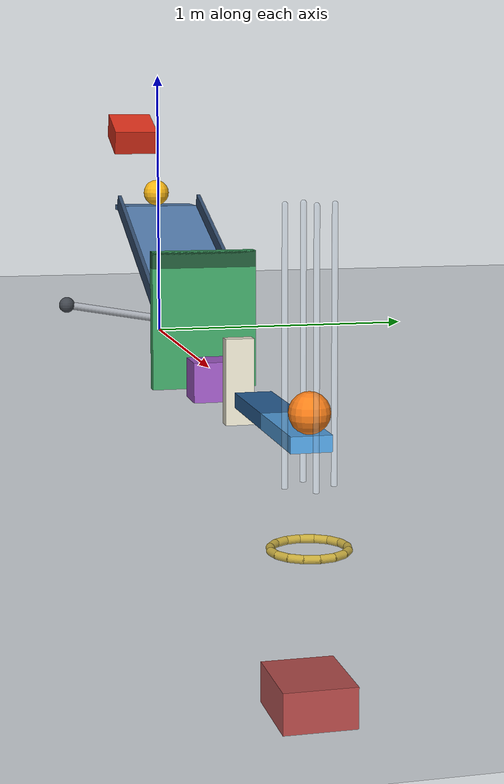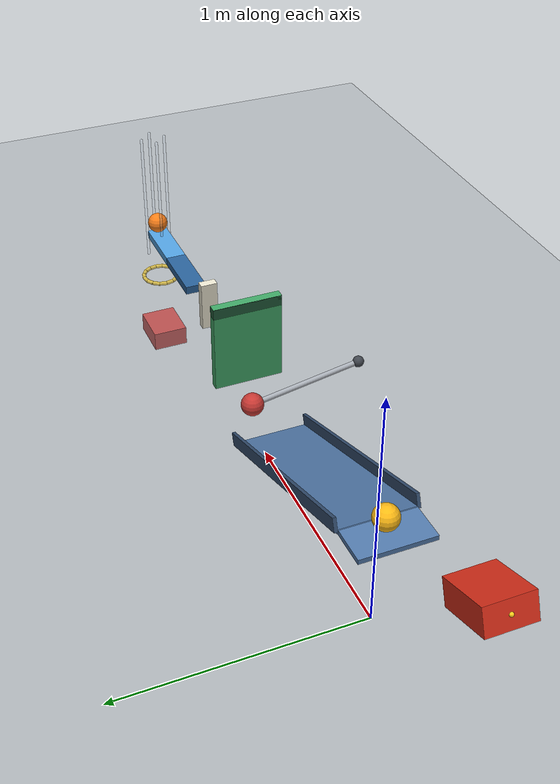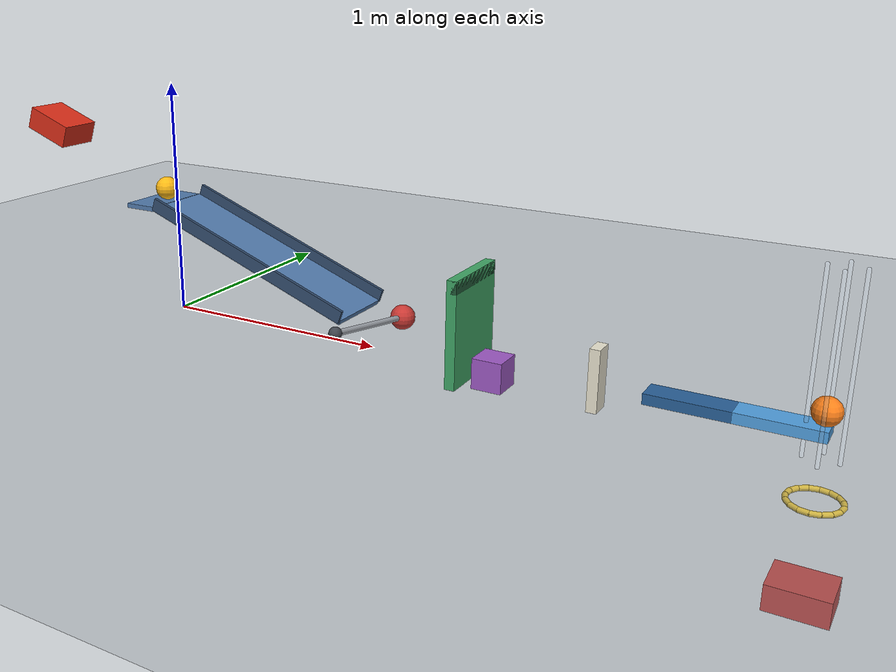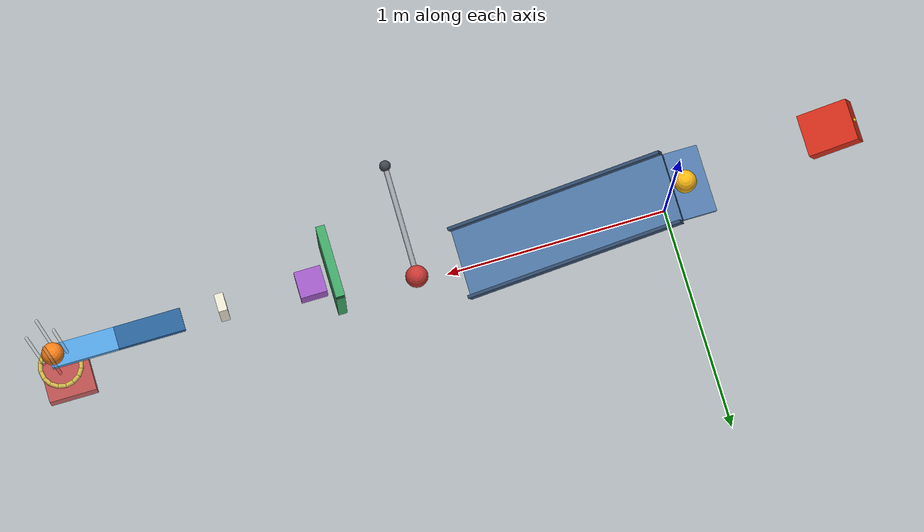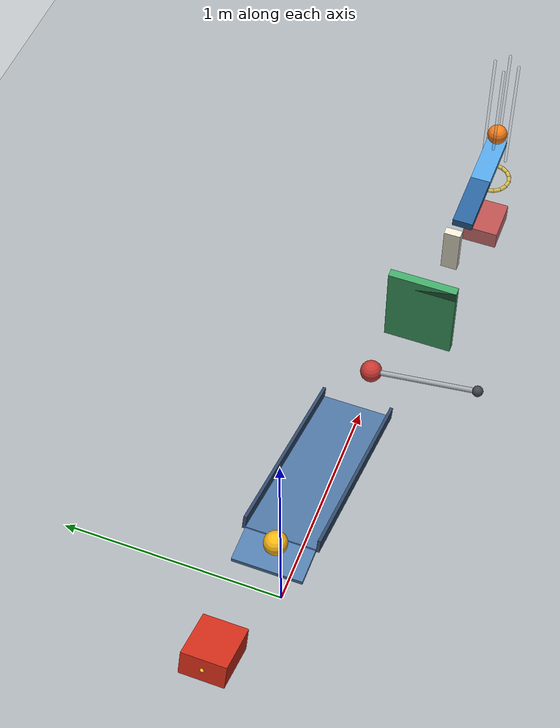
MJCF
<mujoco model="spring_ramp_pendulum_domino_chain">
  <compiler angle="degree" autolimits="true"/>
  <option timestep="0.002" gravity="0 0 -9.81" integrator="implicitfast" solver="Newton" iterations="100" tolerance="1e-10"/>
  <size njmax="4000" nconmax="800"/>
  <visual>
    <global azimuth="135" elevation="-20"/>
    <quality shadowsize="2048"/>
  </visual>

  <!-- Contact damping ratio 0.69 approximates restitution 0.05; it is not an exact restitution setting. -->
  <!-- Collision group 1 is the upper floor. Group 2 represents the open lever/catcher well. -->
  <!-- Domino group 4 interacts with both the upper floor and the lever. -->
  <!-- All initial joint velocities are zero. No motors or external controls are used. -->

  <worldbody>
    <light name="main_light" pos="0 -3 5" dir="0 0 -1" diffuse="0.8 0.8 0.8"/>
    <light name="fill_light" pos="4 3 3" dir="-1 -1 -1" diffuse="0.4 0.4 0.4"/>
    <camera name="overview" pos="4.5 -5 3" xyaxes="0.7809 0.6247 0 -0.2714 0.3393 0.9006"/>

    <geom name="floor" type="plane" pos="0 0 0" size="5 4 0.1" contype="1" conaffinity="1" condim="6" friction="0.68 0.005 0.0015" solref="0.006 0.69" solimp="0.95 0.99 0.001" rgba="0.55 0.59 0.62 0.28"/>

    <!-- Cart1 descends on its axial guide; gravity assists the compressed spring. -->
    <!-- Its front face is initially 0.50 m of axial travel from ball1. -->
    <body name="cart1" pos="-0.67519713 0 0.76775344" quat="0.984807753 0 0.173648178 0">
      <joint name="cart1_slide" type="slide" axis="1 0 0" damping="0.20" limited="true" range="0 0.57" solreflimit="0.004 1"/>
      <geom name="cart1_chassis" type="box" size="0.11 0.09 0.05" mass="0.50" contype="1" conaffinity="1" condim="6" friction="0.68 0.005 0.0015" solref="0.006 0.69" solimp="0.95 0.99 0.001" rgba="0.85 0.18 0.10 1"/>
      <site name="cart1_spring_mark" pos="-0.11 0 0" size="0.008" rgba="1 0.8 0.1 1"/>
    </body>

    <!-- The short horizontal staging shelf keeps ball1 initially at rest. -->
    <!-- The principal inclined surface is 1.00 m long, 0.30 m wide, and inclined 20 degrees. -->
    <body name="ramp1" pos="0.46984631 0 0.32101007" quat="0.984807753 0 0.173648178 0">
      <geom name="ramp1_surface" type="box" pos="0 0 -0.01" size="0.50 0.15 0.01" contype="1" conaffinity="1" condim="6" friction="0.68 0.005 0.0015" solref="0.006 0.69" solimp="0.95 0.99 0.001" rgba="0.32 0.48 0.67 1"/>
      <geom name="ramp1_staging_shelf" type="box" pos="-0.571746 0 -0.036752" quat="0.984807753 0 -0.173648178 0" size="0.075 0.15 0.01" contype="1" conaffinity="1" condim="6" friction="0.68 0.005 0.0015" solref="0.006 0.69" solimp="0.95 0.99 0.001" rgba="0.32 0.48 0.67 1"/>
      <geom name="ramp1_left_rail" type="box" pos="0 -0.157 0.018" size="0.50 0.007 0.028" contype="1" conaffinity="1" condim="3" friction="0.68 0.005 0.0015" solref="0.006 0.69" solimp="0.95 0.99 0.001" rgba="0.20 0.30 0.43 1"/>
      <geom name="ramp1_right_rail" type="box" pos="0 0.157 0.018" size="0.50 0.007 0.028" contype="1" conaffinity="1" condim="3" friction="0.68 0.005 0.0015" solref="0.006 0.69" solimp="0.95 0.99 0.001" rgba="0.20 0.30 0.43 1"/>
    </body>

    <body name="ball1" pos="-0.055 0 0.54202014">
      <freejoint name="ball1_free"/>
      <geom name="ball1_sphere" type="sphere" size="0.05" mass="0.20" contype="1" conaffinity="1" condim="6" friction="0.68 0.005 0.0015" solref="0.006 0.69" solimp="0.95 0.99 0.001" rgba="0.98 0.72 0.08 1"/>
    </body>

    <!-- A 0.50 m rigid pendulum with an oblique hinge axis. -->
    <!-- Negative hinge rotation is clockwise when viewed from above. -->
    <!-- The nearest initial bob surface is 0.10 m beyond the ramp's low edge. -->
    <body name="pendulum1" pos="1.13969262 -0.492403877 0.243824089">
      <joint name="pendulum1_hinge" type="hinge" axis="0 0.173648178 0.984807753" damping="0.04" limited="true" range="-40 0" solreflimit="0.004 1"/>
      <geom name="pendulum1_rod" type="capsule" fromto="0 0 0 0 0.492403877 -0.086824089" size="0.012" mass="0.04" contype="1" conaffinity="1" condim="3" friction="0.68 0.005 0.0015" solref="0.006 0.69" solimp="0.95 0.99 0.001" rgba="0.65 0.67 0.70 1"/>
      <geom name="pendulum1_bob" type="sphere" pos="0 0.492403877 -0.086824089" size="0.05" mass="0.30" contype="1" conaffinity="1" condim="6" friction="0.68 0.005 0.0015" solref="0.006 0.69" solimp="0.95 0.99 0.001" rgba="0.78 0.22 0.20 1"/>
      <geom name="pendulum1_hub" type="sphere" size="0.025" mass="0.01" contype="0" conaffinity="0" rgba="0.25 0.27 0.30 1"/>
    </body>

    <!-- Bottom-hinged door: 0.42 m high, 0.32 m wide, 0.04 m thick. -->
    <!-- Its upper ballast is inside the panel envelope and supplies gravitational work. -->
    <body name="door1" pos="1.491 -0.1152 0.020">
      <joint name="door1_hinge" type="hinge" axis="0 1 0" damping="0.04" limited="true" range="0 70" solreflimit="0.003 1"/>
      <geom name="door1_panel" type="box" pos="0 0 0.21" size="0.02 0.16 0.21" mass="0.05" contype="1" conaffinity="1" condim="6" friction="0.68 0.005 0.0015" solref="0.006 0.69" solimp="0.95 0.99 0.001" rgba="0.25 0.65 0.40 1"/>
      <geom name="door1_upper_ballast" type="box" pos="0 0 0.395" size="0.02 0.16 0.025" mass="0.40" contype="0" conaffinity="0" rgba="0.13 0.35 0.22 1"/>
    </body>

    <body name="block1" pos="1.591 -0.1152 0.060">
      <freejoint name="block1_free"/>
      <geom name="block1_cube" type="box" size="0.06 0.06 0.06" mass="0.35" contype="1" conaffinity="1" condim="6" friction="0.68 0.005 0.0015" solref="0.006 0.69" solimp="0.95 0.99 0.001" rgba="0.62 0.35 0.77 1"/>
    </body>

    <!-- Block1's forward face meets this domino after 0.32 m of travel. -->
    <body name="domino1" pos="1.991 -0.1152 0.120">
      <freejoint name="domino1_free"/>
      <geom name="domino1_slab" type="box" size="0.02 0.04 0.12" mass="0.25" contype="4" conaffinity="3" condim="6" friction="0.68 0.005 0.0015" solref="0.006 0.69" solimp="0.95 0.99 0.001" rgba="0.92 0.90 0.82 1"/>
    </body>

    <!-- The lever's left tip is 0.18 m beyond domino1's initial center. -->
    <!-- Its mass distribution counterbalances ball2 at the initial horizontal pose. -->
    <!-- Floor filtering permits the left arm to descend into the open well. -->
    <body name="lever1" pos="2.471 -0.1152 0.100">
      <inertial pos="-0.112 0 0" mass="0.50" diaginertia="0.000483 0.008795 0.009145"/>
      <joint name="lever1_hinge" type="hinge" axis="0 -1 0" damping="0.04" limited="true" range="0 45" solreflimit="0.003 1"/>
      <geom name="lever1_left_half" type="box" pos="-0.15 0 0" size="0.15 0.05 0.02" contype="2" conaffinity="6" condim="6" friction="0.68 0.005 0.0015" solref="0.006 0.69" solimp="0.95 0.99 0.001" rgba="0.16 0.38 0.60 1"/>
      <geom name="lever1_right_half" type="box" pos="0.15 0 0" size="0.15 0.05 0.02" contype="2" conaffinity="6" condim="6" friction="0.68 0.005 0.0015" solref="0.006 0.69" solimp="0.95 0.99 0.001" rgba="0.32 0.63 0.88 1"/>
    </body>

    <body name="ball2" pos="2.751 -0.1152 0.170">
      <freejoint name="ball2_free"/>
      <geom name="ball2_sphere" type="sphere" size="0.05" mass="0.20" contype="2" conaffinity="2" condim="6" friction="0.68 0.005 0.0015" solref="0.006 0.69" solimp="0.95 0.99 0.001" rgba="0.98 0.50 0.10 1"/>
    </body>

    <!-- A loose vertical guide keeps the launch and subsequent fall over ring1. -->
    <body name="ball2_guide" pos="2.751 -0.1152 0">
      <geom name="ball2_guide_positive_x" type="capsule" fromto="0.059 0 -0.46 0.059 0 0.65" size="0.007" contype="2" conaffinity="2" condim="3" friction="0.68 0.005 0.0015" solref="0.006 0.69" solimp="0.95 0.99 0.001" rgba="0.65 0.75 0.85 0.22"/>
      <geom name="ball2_guide_negative_x" type="capsule" fromto="-0.059 0 -0.46 -0.059 0 0.65" size="0.007" contype="2" conaffinity="2" condim="3" friction="0.68 0.005 0.0015" solref="0.006 0.69" solimp="0.95 0.99 0.001" rgba="0.65 0.75 0.85 0.22"/>
      <geom name="ball2_guide_positive_y" type="capsule" fromto="0 0.059 -0.46 0 0.059 0.65" size="0.007" contype="2" conaffinity="2" condim="3" friction="0.68 0.005 0.0015" solref="0.006 0.69" solimp="0.95 0.99 0.001" rgba="0.65 0.75 0.85 0.22"/>
      <geom name="ball2_guide_negative_y" type="capsule" fromto="0 -0.059 -0.46 0 -0.059 0.65" size="0.007" contype="2" conaffinity="2" condim="3" friction="0.68 0.005 0.0015" solref="0.006 0.69" solimp="0.95 0.99 0.001" rgba="0.65 0.75 0.85 0.22"/>
    </body>

    <!-- Sixteen capsule segments approximate a horizontal ring with 0.16 m minimum clear diameter. -->
    <!-- Ring center is exactly 0.32 m below ball2's initial center. -->
    <body name="ring1" pos="2.751 -0.1152 -0.150">
      <geom name="ring1_segment_00" type="capsule" fromto="0.091763 0 0 0.084778 0.035116 0" size="0.01" contype="2" conaffinity="2" condim="3" friction="0.68 0.005 0.0015" solref="0.006 0.69" solimp="0.95 0.99 0.001" rgba="0.95 0.78 0.15 1"/>
      <geom name="ring1_segment_01" type="capsule" fromto="0.084778 0.035116 0 0.064887 0.064887 0" size="0.01" contype="2" conaffinity="2" condim="3" friction="0.68 0.005 0.0015" solref="0.006 0.69" solimp="0.95 0.99 0.001" rgba="0.95 0.78 0.15 1"/>
      <geom name="ring1_segment_02" type="capsule" fromto="0.064887 0.064887 0 0.035116 0.084778 0" size="0.01" contype="2" conaffinity="2" condim="3" friction="0.68 0.005 0.0015" solref="0.006 0.69" solimp="0.95 0.99 0.001" rgba="0.95 0.78 0.15 1"/>
      <geom name="ring1_segment_03" type="capsule" fromto="0.035116 0.084778 0 0 0.091763 0" size="0.01" contype="2" conaffinity="2" condim="3" friction="0.68 0.005 0.0015" solref="0.006 0.69" solimp="0.95 0.99 0.001" rgba="0.95 0.78 0.15 1"/>
      <geom name="ring1_segment_04" type="capsule" fromto="0 0.091763 0 -0.035116 0.084778 0" size="0.01" contype="2" conaffinity="2" condim="3" friction="0.68 0.005 0.0015" solref="0.006 0.69" solimp="0.95 0.99 0.001" rgba="0.95 0.78 0.15 1"/>
      <geom name="ring1_segment_05" type="capsule" fromto="-0.035116 0.084778 0 -0.064887 0.064887 0" size="0.01" contype="2" conaffinity="2" condim="3" friction="0.68 0.005 0.0015" solref="0.006 0.69" solimp="0.95 0.99 0.001" rgba="0.95 0.78 0.15 1"/>
      <geom name="ring1_segment_06" type="capsule" fromto="-0.064887 0.064887 0 -0.084778 0.035116 0" size="0.01" contype="2" conaffinity="2" condim="3" friction="0.68 0.005 0.0015" solref="0.006 0.69" solimp="0.95 0.99 0.001" rgba="0.95 0.78 0.15 1"/>
      <geom name="ring1_segment_07" type="capsule" fromto="-0.084778 0.035116 0 -0.091763 0 0" size="0.01" contype="2" conaffinity="2" condim="3" friction="0.68 0.005 0.0015" solref="0.006 0.69" solimp="0.95 0.99 0.001" rgba="0.95 0.78 0.15 1"/>
      <geom name="ring1_segment_08" type="capsule" fromto="-0.091763 0 0 -0.084778 -0.035116 0" size="0.01" contype="2" conaffinity="2" condim="3" friction="0.68 0.005 0.0015" solref="0.006 0.69" solimp="0.95 0.99 0.001" rgba="0.95 0.78 0.15 1"/>
      <geom name="ring1_segment_09" type="capsule" fromto="-0.084778 -0.035116 0 -0.064887 -0.064887 0" size="0.01" contype="2" conaffinity="2" condim="3" friction="0.68 0.005 0.0015" solref="0.006 0.69" solimp="0.95 0.99 0.001" rgba="0.95 0.78 0.15 1"/>
      <geom name="ring1_segment_10" type="capsule" fromto="-0.064887 -0.064887 0 -0.035116 -0.084778 0" size="0.01" contype="2" conaffinity="2" condim="3" friction="0.68 0.005 0.0015" solref="0.006 0.69" solimp="0.95 0.99 0.001" rgba="0.95 0.78 0.15 1"/>
      <geom name="ring1_segment_11" type="capsule" fromto="-0.035116 -0.084778 0 0 -0.091763 0" size="0.01" contype="2" conaffinity="2" condim="3" friction="0.68 0.005 0.0015" solref="0.006 0.69" solimp="0.95 0.99 0.001" rgba="0.95 0.78 0.15 1"/>
      <geom name="ring1_segment_12" type="capsule" fromto="0 -0.091763 0 0.035116 -0.084778 0" size="0.01" contype="2" conaffinity="2" condim="3" friction="0.68 0.005 0.0015" solref="0.006 0.69" solimp="0.95 0.99 0.001" rgba="0.95 0.78 0.15 1"/>
      <geom name="ring1_segment_13" type="capsule" fromto="0.035116 -0.084778 0 0.064887 -0.064887 0" size="0.01" contype="2" conaffinity="2" condim="3" friction="0.68 0.005 0.0015" solref="0.006 0.69" solimp="0.95 0.99 0.001" rgba="0.95 0.78 0.15 1"/>
      <geom name="ring1_segment_14" type="capsule" fromto="0.064887 -0.064887 0 0.084778 -0.035116 0" size="0.01" contype="2" conaffinity="2" condim="3" friction="0.68 0.005 0.0015" solref="0.006 0.69" solimp="0.95 0.99 0.001" rgba="0.95 0.78 0.15 1"/>
      <geom name="ring1_segment_15" type="capsule" fromto="0.084778 -0.035116 0 0.091763 0 0" size="0.01" contype="2" conaffinity="2" condim="3" friction="0.68 0.005 0.0015" solref="0.006 0.69" solimp="0.95 0.99 0.001" rgba="0.95 0.78 0.15 1"/>
    </body>

    <!-- At first deck contact, ball2's center is 0.25 m below ring1's center. -->
    <body name="cart2" pos="2.751 -0.1152 -0.500">
      <joint name="cart2_slide" type="slide" axis="1 0 0" damping="0.20" limited="true" range="-0.10 0.10" solreflimit="0.004 1"/>
      <geom name="cart2_chassis" type="box" size="0.11 0.09 0.05" mass="0.50" contype="2" conaffinity="2" condim="6" friction="0.68 0.005 0.0015" solref="0.006 0.69" solimp="0.95 0.99 0.001" rgba="0.80 0.20 0.18 1"/>
    </body>
  </worldbody>

  <!-- The axial spring is compressed 0.20 m at q=0 and becomes unloaded at q=0.20. -->
  <!-- The dead band models a compression spring that does not pull after extending. -->
  <tendon>
    <fixed name="cart1_axial_spring" stiffness="18" damping="0" springlength="0.20 1.00">
      <joint joint="cart1_slide" coef="1"/>
    </fixed>
  </tendon>

  <keyframe>
    <key name="start" time="0"/>
  </keyframe>
</mujoco>
